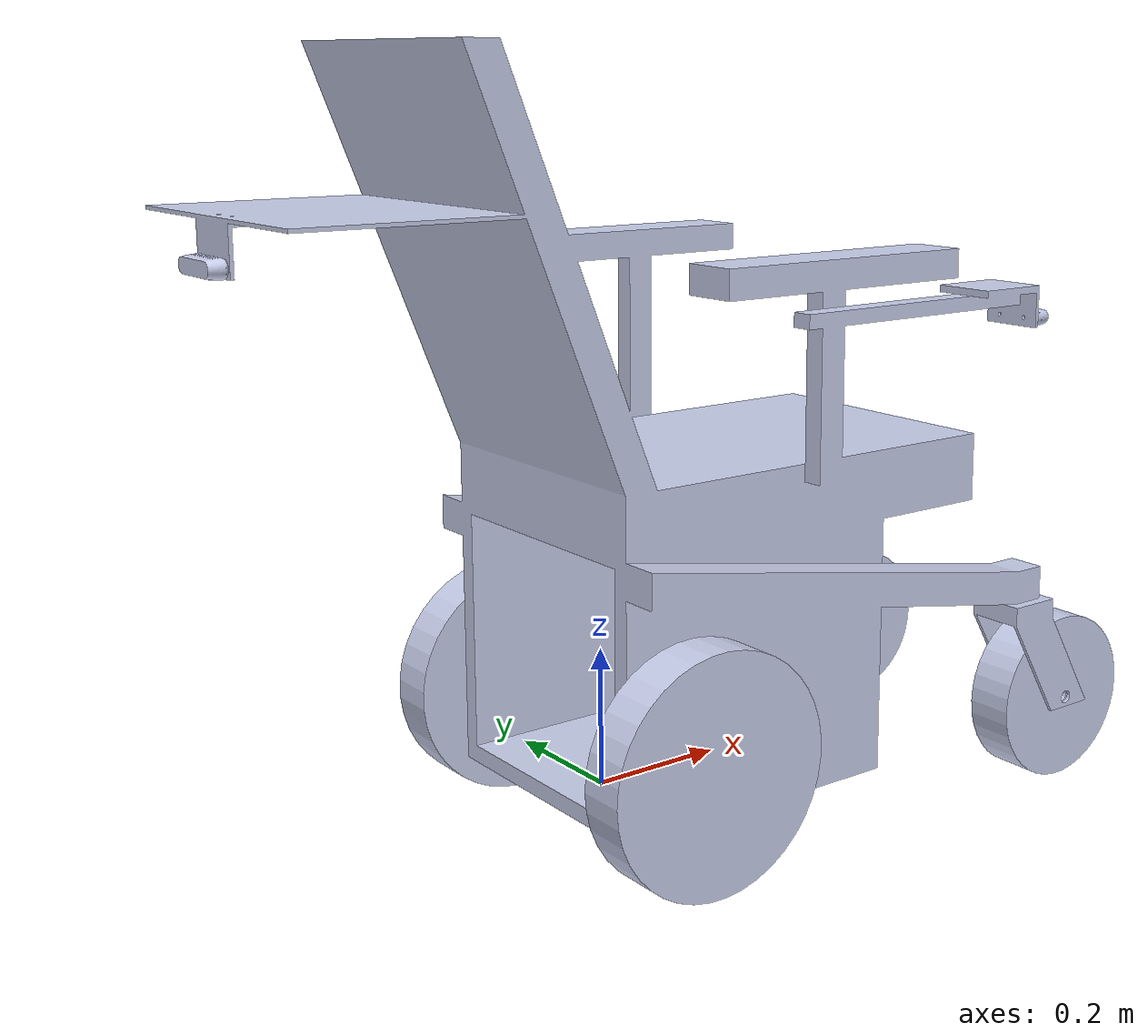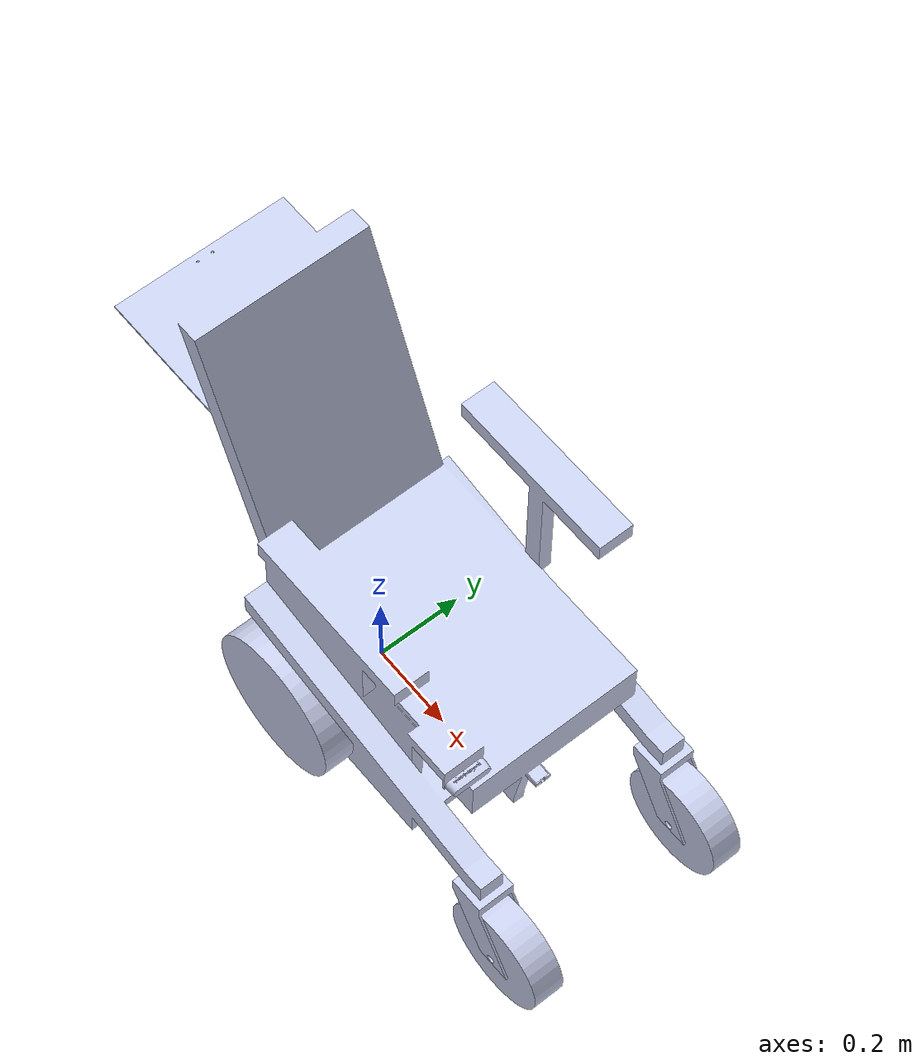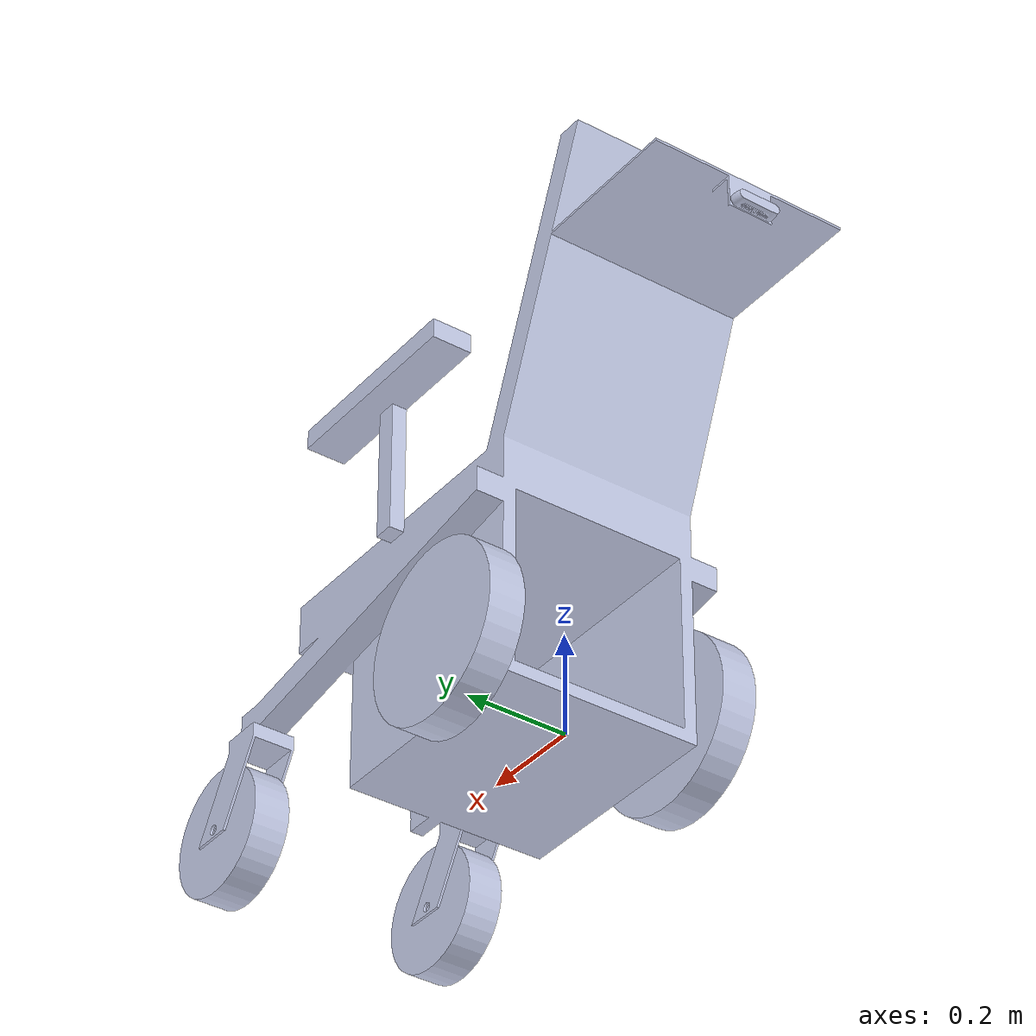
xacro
<?xml version="1.0" ?>
<robot name="wheelchair" xmlns:xacro="http://www.ros.org/wiki/xacro">
<xacro:include filename="$(find wheelchair_description)/urdf/wheelchair.gazebo" />
<xacro:include filename="$(find wheelchair_description)/urdf/wheelchair.trans" />
<xacro:include filename="$(find wheelchair_description)/urdf/materials.xacro" />
  <link
    name="base_link">
    <inertial>
      <origin
        xyz="0.114536595580849 -0.00152408256990729 0.436779247326475"
        rpy="0 0 0" />
      <mass
        value="447.276736142322" />
      <inertia
        ixx="35.1897195522903"
        ixy="0.196649743016102"
        ixz="10.8933242975922"
        iyy="48.0925168138991"
        iyz="0.167249581771051"
        izz="32.2814889958827" />
    </inertial>
    <visual>
      <origin
        xyz="0 0 0"
        rpy="0 0 0" />
      <geometry>
        <mesh
          filename="package://wheelchair_description/meshes/base_link.STL" />
      </geometry>
      <material
        name="">
        <color
          rgba="0.792156862745098 0.819607843137255 0.933333333333333 1" />
      </material>
    </visual>
    <collision>
      <origin
        xyz="0 0 0"
        rpy="0 0 0" />
      <geometry>
        <mesh
          filename="package://wheelchair_description/meshes/base_link.STL" />
      </geometry>
    </collision>
  </link>
  <link
    name="BackWheel_R">
    <inertial>
      <origin
        xyz="-0.00169441028748185 0.00740469367557789 0.013256206081967"
        rpy="0 0 0" />
      <mass
        value="6.27376052921882" />
      <inertia
        ixx="0.0484757628359798"
        ixy="1.61559943577015E-33"
        ixz="4.33680868994202E-19"
        iyy="0.0484757628359798"
        iyz="2.40741243048404E-34"
        izz="0.091819799725367" />
    </inertial>
    <visual>
      <origin
        xyz="0 0 0"
        rpy="0 0 0" />
      <geometry>
        <mesh
          filename="package://wheelchair_description/meshes/BackWheel_R.STL" />
      </geometry>
      <material
        name="">
        <color
          rgba="0.792156862745098 0.819607843137255 0.933333333333333 1" />
      </material>
    </visual>
    <collision>
      <origin
        xyz="0 0 0"
        rpy="0 0 0" />
      <geometry>
        <mesh
          filename="package://wheelchair_description/meshes/BackWheel_R.STL" />
      </geometry>
    </collision>
  </link>
  <joint
    name="joint_BackWheel_R"
    type="continuous">
    <origin
      xyz="0.0016944 -0.22678 0.092595"
      rpy="1.5708 0 0" />
    <parent
      link="base_link" />
    <child
      link="BackWheel_R" />
    <axis
      xyz="0 0 -1" />
  </joint>
  <link
    name="BackWheel_L">
    <inertial>
      <origin
        xyz="0.000656843796669526 0.00740469367557789 -0.0568128863805126"
        rpy="0 0 0" />
      <mass
        value="6.27376052921882" />
      <inertia
        ixx="0.0484757628359798"
        ixy="-3.01150799459453E-34"
        ixz="-1.10588621593521E-17"
        iyy="0.0484757628359798"
        iyz="3.50584621014999E-34"
        izz="0.091819799725367" />
    </inertial>
    <visual>
      <origin
        xyz="0 0 0"
        rpy="0 0 0" />
      <geometry>
        <mesh
          filename="package://wheelchair_description/meshes/BackWheel_L.STL" />
      </geometry>
      <material
        name="">
        <color
          rgba="0.792156862745098 0.819607843137255 0.933333333333333 1" />
      </material>
    </visual>
    <collision>
      <origin
        xyz="0 0 0"
        rpy="0 0 0" />
      <geometry>
        <mesh
          filename="package://wheelchair_description/meshes/BackWheel_L.STL" />
      </geometry>
    </collision>
  </link>
  <joint
    name="joint_BackWheel_L"
    type="continuous">
    <origin
      xyz="-0.00065684 0.18322 0.092595"
      rpy="1.5708 0 0" />
    <parent
      link="base_link" />
    <child
      link="BackWheel_L" />
    <axis
      xyz="0 0 -1" />
  </joint>
  <link
    name="frontSupport_R">
    <inertial>
      <origin
        xyz="0.0135676093823349 1.95081814838016E-05 -0.0379084155560667"
        rpy="0 0 0" />
      <mass
        value="2.84122714047001" />
      <inertia
        ixx="0.0101880379705202"
        ixy="-8.52702502935724E-07"
        ixz="0.00344214521935034"
        iyy="0.0107810768742505"
        iyz="4.94928706600269E-06"
        izz="0.0054426407340849" />
    </inertial>
    <visual>
      <origin
        xyz="0 0 0"
        rpy="0 0 0" />
      <geometry>
        <mesh
          filename="package://wheelchair_description/meshes/frontSupport_R.STL" />
      </geometry>
      <material
        name="">
        <color
          rgba="0.792156862745098 0.819607843137255 0.933333333333333 1" />
      </material>
    </visual>
    <collision>
      <origin
        xyz="0 0 0"
        rpy="0 0 0" />
      <geometry>
        <mesh
          filename="package://wheelchair_description/meshes/frontSupport_R.STL" />
      </geometry>
    </collision>
  </link>
  <joint
    name="joint_frontSupport_R"
    type="revolute">
    <origin
      xyz="0.59999 -0.2275 0.21923"
      rpy="0 0 0" />
    <parent
      link="base_link" />
    <child
      link="frontSupport_R" />
    <axis
      xyz="0 0 1" />
    <limit effort="1000.0" lower="-10" upper="10" velocity="0.5"/>
  </joint>
  <link
    name="frontWheel_R">
    <inertial>
      <origin
        xyz="-0.00178720463504489 0.00740469367557794 -0.0183364245234532"
        rpy="0 0 0" />
      <mass
        value="3.41412581628871" />
      <inertia
        ixx="0.0148158834902695"
        ixy="-2.49110762826259E-34"
        ixz="-3.25938278103455E-17"
        iyy="0.0148158834902695"
        iyz="5.57893209289991E-20"
        izz="0.02684356423057" />
    </inertial>
    <visual>
      <origin
        xyz="0 0 0"
        rpy="0 0 0" />
      <geometry>
        <mesh
          filename="package://wheelchair_description/meshes/frontWheel_R.STL" />
      </geometry>
      <material
        name="">
        <color
          rgba="0.792156862745098 0.819607843137255 0.933333333333333 1" />
      </material>
    </visual>
    <collision>
      <origin
        xyz="0 0 0"
        rpy="0 0 0" />
      <geometry>
        <mesh
          filename="package://wheelchair_description/meshes/frontWheel_R.STL" />
      </geometry>
    </collision>
  </link>
  <joint
    name="joint_frontWheel_R"
    type="continuous">
    <origin
      xyz="0.080904 -0.01822 -0.17105"
      rpy="1.5708 0 0.0014378" />
    <parent
      link="frontSupport_R" />
    <child
      link="frontWheel_R" />
    <axis
      xyz="0 0 -1" />
  </joint>
  <link
    name="frontSupport_L">
    <inertial>
      <origin
        xyz="0.0135676093823347 1.95081814836906E-05 -0.0379084155560666"
        rpy="0 0 0" />
      <mass
        value="2.84122714047" />
      <inertia
        ixx="0.0101880379705202"
        ixy="-8.52702502926847E-07"
        ixz="0.00344214521935032"
        iyy="0.0107810768742504"
        iyz="4.9492870659887E-06"
        izz="0.00544264073408488" />
    </inertial>
    <visual>
      <origin
        xyz="0 0 0"
        rpy="0 0 0" />
      <geometry>
        <mesh
          filename="package://wheelchair_description/meshes/frontSupport_L.STL" />
      </geometry>
      <material
        name="">
        <color
          rgba="0.792156862745098 0.819607843137255 0.933333333333333 1" />
      </material>
    </visual>
    <collision>
      <origin
        xyz="0 0 0"
        rpy="0 0 0" />
      <geometry>
        <mesh
          filename="package://wheelchair_description/meshes/frontSupport_L.STL" />
      </geometry>
    </collision>
  </link>
  <joint
    name="joint_frontSupport_L"
    type="revolute">
    <origin
      xyz="0.59999 0.2275 0.21923"
      rpy="0 0 0" />
    <parent
      link="base_link" />
    <child
      link="frontSupport_L" />
    <axis
      xyz="0 0 1" />
    <limit effort="1000.0" lower="-10" upper="10" velocity="0.5"/>
  </joint>
  <link
    name="frontWheel_L">
    <inertial>
      <origin
        xyz="0.000822104499104581 0.00740469367557794 -0.0183401546141397"
        rpy="0 0 0" />
      <mass
        value="3.41412581628871" />
      <inertia
        ixx="0.0148158834902696"
        ixy="-9.4039548065783E-35"
        ixz="7.9959910220806E-19"
        iyy="0.0148158834902695"
        iyz="5.57893209289991E-20"
        izz="0.02684356423057" />
    </inertial>
    <visual>
      <origin
        xyz="0 0 0"
        rpy="0 0 0" />
      <geometry>
        <mesh
          filename="package://wheelchair_description/meshes/frontWheel_L.STL" />
      </geometry>
      <material
        name="">
        <color
          rgba="0.792156862745098 0.819607843137255 0.933333333333333 1" />
      </material>
    </visual>
    <collision>
      <origin
        xyz="0 0 0"
        rpy="0 0 0" />
      <geometry>
        <mesh
          filename="package://wheelchair_description/meshes/frontWheel_L.STL" />
      </geometry>
    </collision>
  </link>
  <joint
    name="joint_frontWheel_L"
    type="continuous">
    <origin
      xyz="0.078295 -0.018228 -0.17105"
      rpy="1.5708 0 0.0014378" />
    <parent
      link="frontSupport_L" />
    <child
      link="frontWheel_L" />
    <axis
      xyz="0 0 -1" />
  </joint>
  <link
    name="IMU">
    <inertial>
      <origin
        xyz="0.00166469876107445 -4.16333634234434E-17 0.00804691990209122"
        rpy="0 0 0" />
      <mass
        value="0.0337817410992299" />
      <inertia
        ixx="4.25090846017802E-06"
        ixy="-6.54077808907863E-08"
        ixz="5.4131140322816E-08"
        iyy="3.73423045571171E-06"
        iyz="-2.72020403770311E-21"
        izz="7.51401299696132E-06" />
    </inertial>
    <visual>
      <origin
        xyz="0 0 0"
        rpy="0 0 0" />
      <geometry>
        <mesh
          filename="package://wheelchair_description/meshes/IMU.STL" />
      </geometry>
      <material
        name="">
        <color
          rgba="0.792156862745098 0.819607843137255 0.933333333333333 1" />
      </material>
    </visual>
    <collision>
      <origin
        xyz="0 0 0"
        rpy="0 0 0" />
      <geometry>
        <mesh
          filename="package://wheelchair_description/meshes/IMU.STL" />
      </geometry>
    </collision>
  </link>
  <joint
    name="joint_IMU"
    type="fixed">
    <origin
      xyz="0.48593 0 0.21221"
      rpy="0 0 0" />
    <parent
      link="base_link" />
    <child
      link="IMU" />
    <axis
      xyz="0 0 0" />
  </joint>
  <link
    name="frontCam">
    <inertial>
      <origin
        xyz="-0.00734413497152947 -0.00365798760354635 0.0108401434966239"
        rpy="0 0 0" />
      <mass
        value="0.0447521305742423" />
      <inertia
        ixx="2.73620547322335E-05"
        ixy="2.8047302259071E-09"
        ixz="1.17470701926149E-09"
        iyy="3.94471940669399E-06"
        iyz="2.44349975033884E-07"
        izz="2.72774944848882E-05" />
    </inertial>
    <visual>
      <origin
        xyz="0 0 0"
        rpy="0 0 0" />
      <geometry>
        <mesh
          filename="package://wheelchair_description/meshes/frontCam.STL" />
      </geometry>
      <material
        name="">
        <color
          rgba="0.792156862745098 0.819607843137255 0.933333333333333 1" />
      </material>
    </visual>
    <collision>
      <origin
        xyz="0 0 0"
        rpy="0 0 0" />
      <geometry>
        <mesh
          filename="package://wheelchair_description/meshes/frontCam.STL" />
      </geometry>
    </collision>
  </link>
  <joint
    name="joint_frontCam"
    type="fixed">
    <origin
      xyz="0.55611 -0.2411 0.64417"
      rpy="0 1.5708 0" />
    <parent
      link="base_link" />
    <child
      link="frontCam" />
    <axis
      xyz="0 0 0" />
  </joint>
  <link
    name="backCam">
    <inertial>
      <origin
        xyz="-0.0073441349556605 -0.00227376480826029 -0.0130605697921402"
        rpy="0 0 0" />
      <mass
        value="0.0447521306683493" />
      <inertia
        ixx="2.73620547332691E-05"
        ixy="2.80473267383786E-09"
        ixz="1.17470681644223E-09"
        iyy="3.94471941280304E-06"
        iyz="2.4434997511858E-07"
        izz="2.7277494491309E-05" />
    </inertial>
    <visual>
      <origin
        xyz="0 0 0"
        rpy="0 0 0" />
      <geometry>
        <mesh
          filename="package://wheelchair_description/meshes/backCam.STL" />
      </geometry>
      <material
        name="">
        <color
          rgba="0.792156862745098 0.819607843137255 0.933333333333333 1" />
      </material>
    </visual>
    <collision>
      <origin
        xyz="0 0 0"
        rpy="0 0 0" />
      <geometry>
        <mesh
          filename="package://wheelchair_description/meshes/backCam.STL" />
      </geometry>
    </collision>
  </link>
  <joint
    name="joint_backCam"
    type="fixed">
    <origin
      xyz="-0.56481 -0.00252 0.7679"
      rpy="3.1416 1.5708 0" />
    <parent
      link="base_link" />
    <child
      link="backCam" />
    <axis
      xyz="0 0 0" />
  </joint>

</robot>

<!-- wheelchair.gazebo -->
<robot name="wheelchair" xmlns:xacro="http://www.ros.org/wiki/xacro" >

  <material name="dark_grey"><color rgba="0.2 0.2 0.2 1.0" /></material>
  <material name="light_grey"><color rgba="0.4 0.4 0.4 1.0" /></material>
  <material name="yellow"><color rgba="0.8 0.8 0.0 1.0" /></material>
  <material name="black"><color rgba="0.15 0.15 0.15 1.0" /></material>

<xacro:property name="body_color" value="Gazebo/Yellow" />
<xacro:property name="wheel_color" value="Gazebo/Gray" />
<xacro:property name="support_color" value="Gazebo/Red" />

<gazebo>
  <plugin name="control" filename="libgazebo_ros_control.so">

  </plugin>
</gazebo>
<gazebo>
    <plugin name="imu_plugin" filename="libgazebo_ros_imu.so">
      <alwaysOn>true</alwaysOn>
      <bodyName>IMU</bodyName>
      <topicName>imu</topicName>
      <serviceName>imu_service</serviceName>
      <gaussianNoise>0.0</gaussianNoise>
      <updateRate>20.0</updateRate>
    </plugin>
  </gazebo>
<gazebo reference="base_link">
  <material>${body_color}</material>
  <mu1>0.5</mu1>
  <mu2>0.5</mu2>
  <selfCollide>true</selfCollide>
  <gravity>true</gravity>
</gazebo>

<gazebo reference="BackWheel_R">
  <material>${wheel_color}</material>
  <mu1>0.5</mu1>
  <mu2>0.5</mu2>
  <selfCollide>true</selfCollide>
</gazebo>

<gazebo reference="BackWheel_L">
  <material>${wheel_color}</material>
  <mu1>0.5</mu1>
  <mu2>0.5</mu2>
  <selfCollide>true</selfCollide>
</gazebo>

<gazebo reference="frontSupport_R">
  <material>${support_color}</material>
  <mu1>0.5</mu1>
  <mu2>0.5</mu2>
  <selfCollide>true</selfCollide>
  <gravity>true</gravity>
</gazebo>

<gazebo reference="frontWheel_R">
  <material>${wheel_color}</material>
  <mu1>0.5</mu1>
  <mu2>0.5</mu2>
  <selfCollide>true</selfCollide>
</gazebo>

<gazebo reference="frontSupport_L">
  <material>${support_color}</material>
  <mu1>0.5</mu1>
  <mu2>0.5</mu2>
  <selfCollide>true</selfCollide>
  <gravity>true</gravity>
</gazebo>

<gazebo reference="frontWheel_L">
  <material>${wheel_color}</material>
  <mu1>0.5</mu1>
  <mu2>0.5</mu2>
  <selfCollide>true</selfCollide>
</gazebo>

</robot>

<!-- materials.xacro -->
<robot name="wheelchair" xmlns:xacro="http://www.ros.org/wiki/xacro" >

<material name="silver">
  <color rgba="0.700 0.700 0.700 1.000"/>
</material>

</robot>
